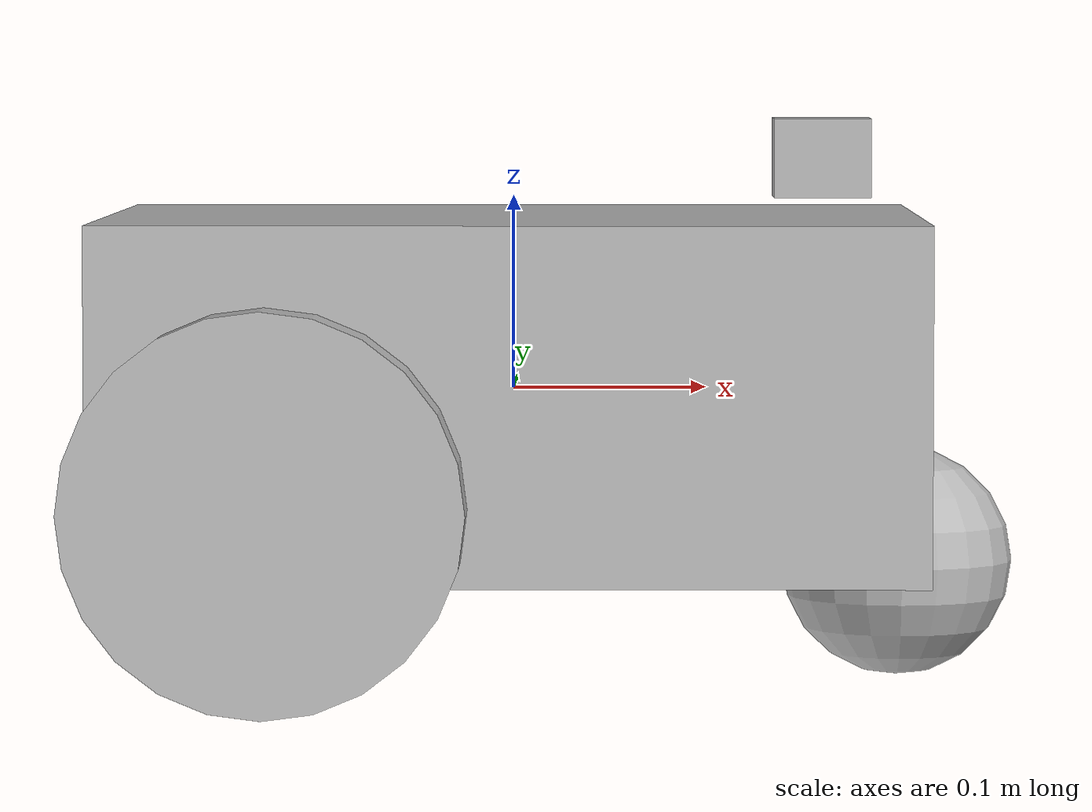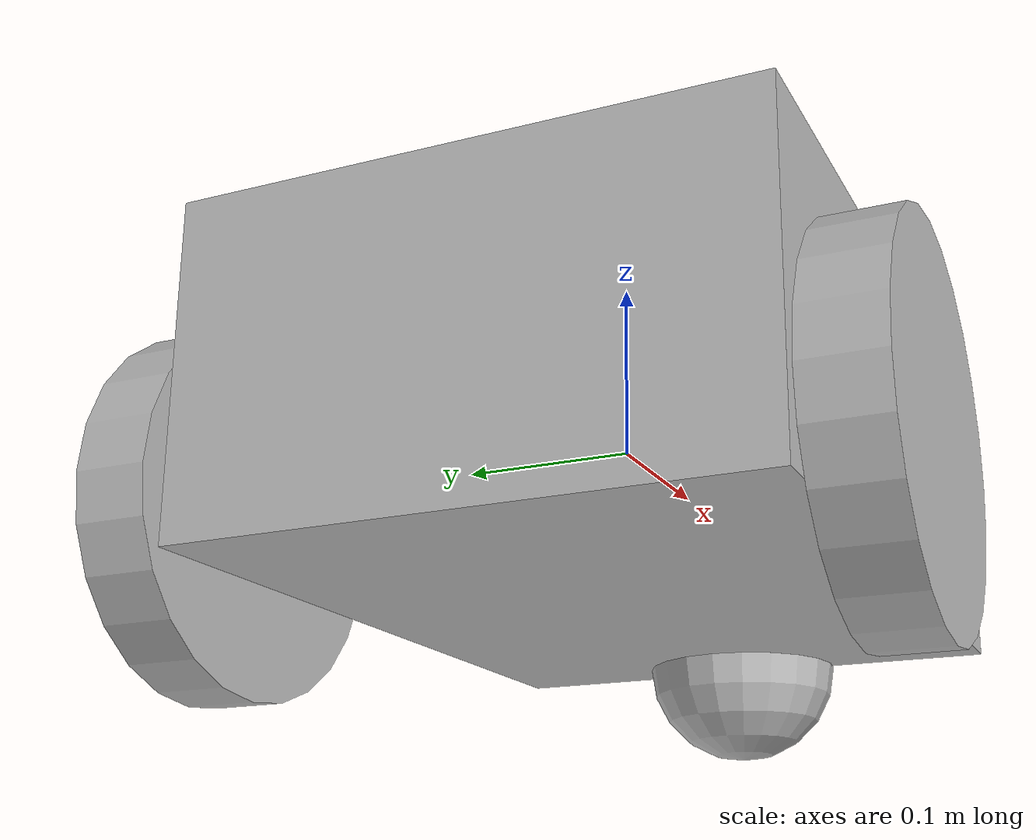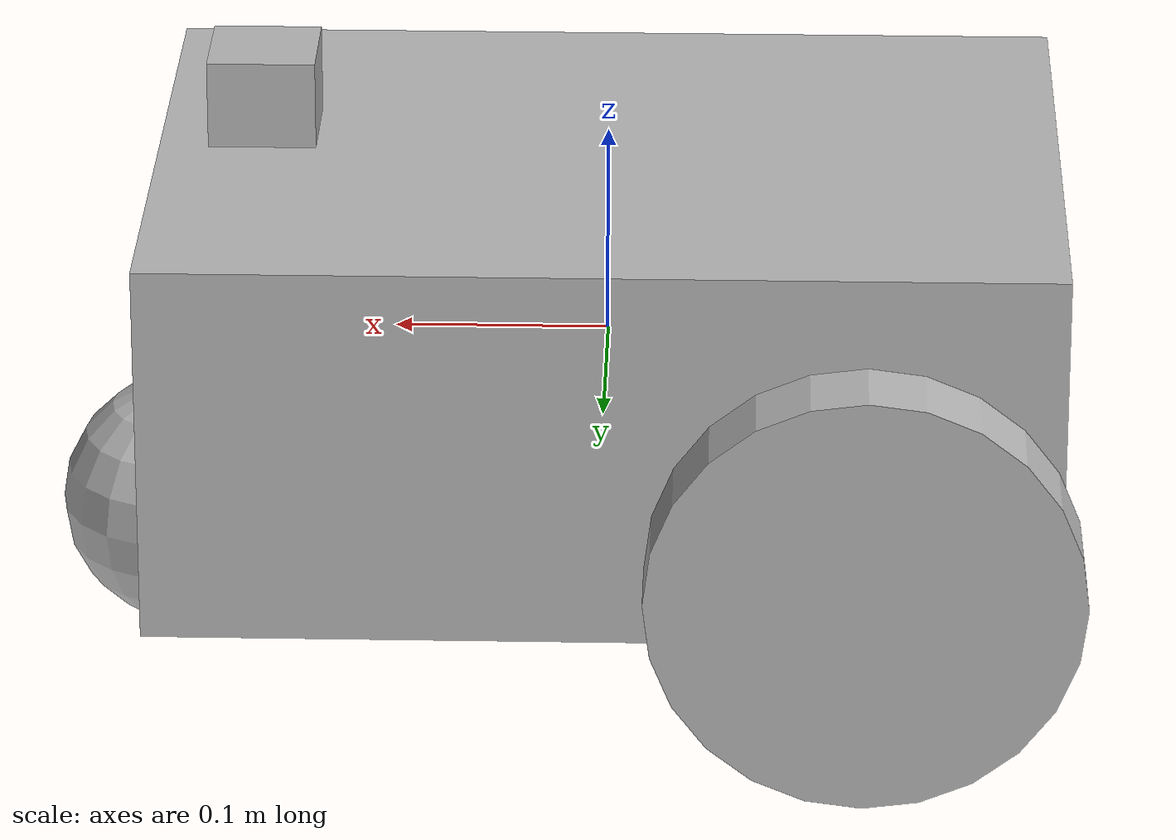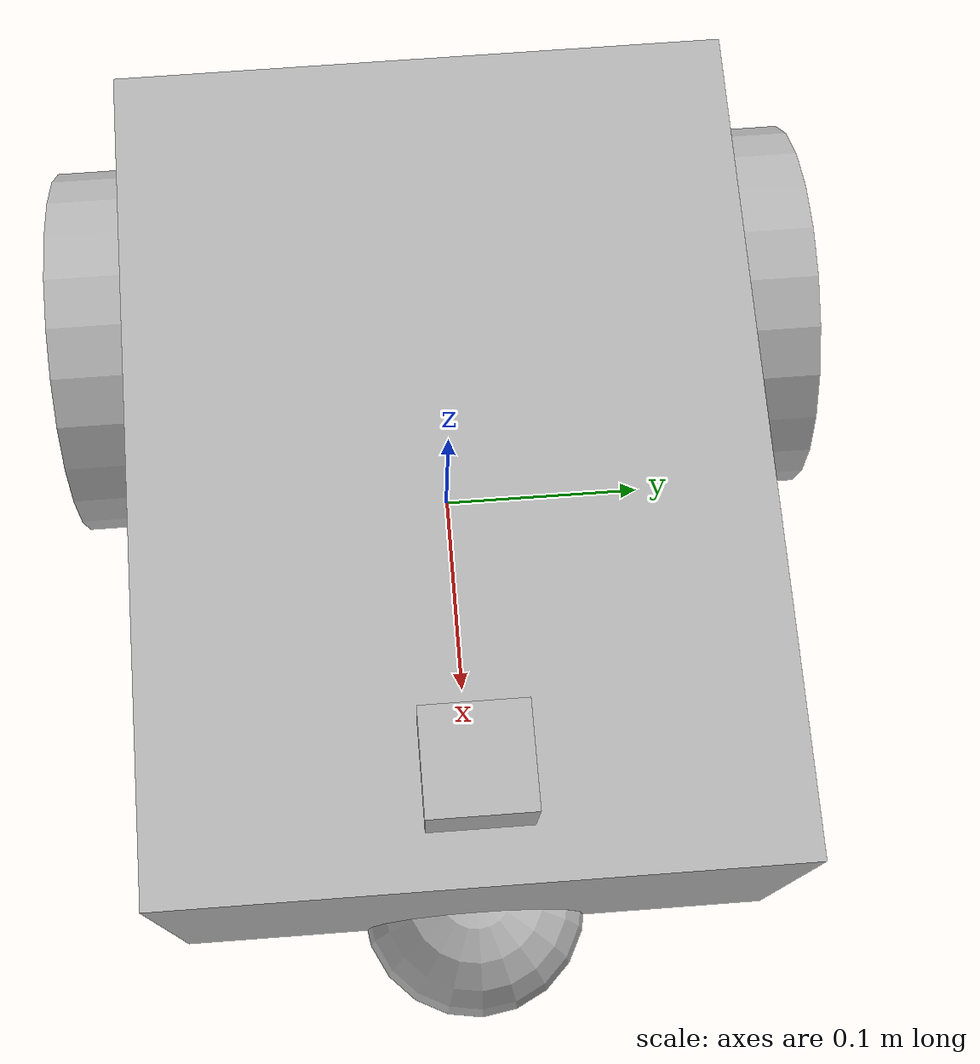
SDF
<?xml version="1.0"?>
<sdf version="1.5">

    <model name="orthopillar">
        <pose>0.0 0.0 0.0 0.0 0.0 0.0</pose>

        <!-- _________________________________________________________Robot Base_________________________________________________________ -->
        <link name="base_footprint"/>

        <link name="base_link">

            <inertial>
                <pose>0.0 0.0 0.0 0.0 0.0 0.0</pose>
                <inertia>
                    <ixx>0.261</ixx>
                    <ixy>0.000</ixy>
                    <ixz>0.000</ixz>
                    <iyy>0.340625</iyy>
                    <iyz>0.000</iyz>
                    <izz>0.160625</izz>
                </inertia>
                <mass>15</mass>
            </inertial>

            <collision name="base_collision">
                <pose>0.0 0.0 0.0 0.0 0.0 0.0</pose>
                <geometry>
                    <box>
                        <size>0.42 0.31 0.18</size>
                    </box>
                </geometry>
            </collision>

            <visual name="base_visual">
                <pose>0.0 0.0 0.0 0.0 0.0 0.0</pose>
                <geometry>
                    <box>
                        <size>0.42 0.31 0.18</size>
                    </box>
                </geometry>
            </visual>
        </link>

        <!-- _________________________________________________________ LASER _________________________________________________________-->
        <link name="laser_link">

            <inertial>
                <pose>0 0 0 0 0 0</pose>
                <inertia>
                    <ixx>0.0</ixx>
                    <ixy>0.0</ixy>
                    <ixz>0.0</ixz>
                    <iyy>0.0</iyy>
                    <iyz>0.0</iyz>
                    <izz>0.0</izz>
                </inertia>
                <mass>0.1</mass>
            </inertial>

            <collision name="collision-base">
                <pose>0.16 0 0.12 0 0 0</pose>
                <geometry>
                    <box>
                        <size>0.05 0.05 0.041</size>
                    </box>
                </geometry>
            </collision>

            <visual name="visual-base">
                <pose>0.16 0  0.12 0 0 0</pose>
                <geometry>
                    <box>
                        <size>0.05 0.05 0.041</size>
                    </box>
                </geometry>
            </visual>

            <collision name="collision-top">
                <pose>0.16 0 0.12 0 0 0</pose>
                <geometry>
                    <cylinder>
                        <radius>0.021</radius>
                        <length>0.029</length>
                    </cylinder>
                </geometry>
            </collision>

            <visual name="visual-top">
                <pose>0.16 0 0.12 0 0 0</pose>
                <geometry>
                    <cylinder>
                        <radius>0.021</radius>
                        <length>0.029</length>
                    </cylinder>
                </geometry>
            </visual>

            <sensor name="laser" type="ray">
                <always_on>true</always_on>
                <visualize>true</visualize>
                <pose>0.16 0 0.12 0 0 0</pose>
                <update_rate>5</update_rate>
                <ray>
                    <scan>
                        <horizontal>
                            <samples>360</samples>
                            <resolution>1.000000</resolution>
                            <min_angle>-1.04</min_angle>
                            <max_angle>1.04</max_angle>
                        </horizontal>
                    </scan>
                    <range>
                        <min>0.120000</min>
                        <max>10</max>
                        <resolution>0.015000</resolution>
                    </range>
                    <noise>
                        <type>gaussian</type>
                        <mean>0.0</mean>
                        <stddev>0.01</stddev>
                    </noise>
                </ray>
                <plugin name="laser" filename="libgazebo_ros_ray_sensor.so">
                    <ros>
                        <remapping>~/out:=laser_scan</remapping>
                    </ros>
                    <output_type>sensor_msgs/LaserScan</output_type>
                    <frame_name>laser_link</frame_name>
                </plugin>
            </sensor>
        </link>

        <!-- _________________________________________________________Wheel left_________________________________________________________ -->
        <link name="drivewhl_l_link">

            <inertial>
                <pose>-0.12 0.18 -0.05 -1.57 0 0</pose>
                <inertia>
                    <ixx>0.001</ixx>
                    <ixy>0.000</ixy>
                    <ixz>0.000</ixz>
                    <iyy>0.001</iyy>
                    <iyz>0.000</iyz>
                    <izz>0.0025</izz>
                </inertia>
                <mass>0.5</mass>
            </inertial>

            <collision name="wheel_left_collision">
                <pose>-0.12 0.18 -0.05 -1.57 0 0</pose>
                <geometry>
                    <cylinder>
                        <radius>0.1</radius>
                        <length>0.04</length>
                    </cylinder>
                </geometry>

                <surface>
                    <!-- This friction pamareter don't contain reliable data!! -->
                    <friction>
                        <ode>
                            <mu>100000.0</mu>
                            <mu2>100000.0</mu2>
                            <fdir1>0 0 0</fdir1>
                            <slip1>0.0</slip1>
                            <slip2>0.0</slip2>
                        </ode>
                    </friction>
                    <contact>
                        <ode>
                            <soft_cfm>0</soft_cfm>
                            <soft_erp>0.2</soft_erp>
                            <kp>1e+5</kp>
                            <kd>1</kd>
                            <max_vel>0.01</max_vel>
                            <min_depth>0.001</min_depth>
                        </ode>
                    </contact>
                </surface>
            </collision>

            <visual name="wheel_left_visual">
                <pose>-0.12 0.18 -0.05 -1.57 0 0</pose>
                <geometry>
                    <cylinder>
                        <radius>0.1</radius>
                        <length>0.04</length>
                    </cylinder>
                </geometry>
            </visual>
        </link>

        <!-- _________________________________________________________Wheel right_________________________________________________________ -->
        <link name="drivewhl_r_link">

            <inertial>
                <pose>-0.12 -0.18 -0.05 -1.57 0 0</pose>
                <inertia>
                    <ixx>0.001</ixx>
                    <ixy>0.000</ixy>
                    <ixz>0.000</ixz>
                    <iyy>0.001</iyy>
                    <iyz>0.000</iyz>
                    <izz>0.0025</izz>
                </inertia>
                <mass>0.5</mass>
            </inertial>

            <collision name="wheel_right_collision">
                <pose>-0.12 -0.18 -0.05 -1.57 0 0</pose>
                <geometry>
                    <cylinder>
                        <radius>0.1</radius>
                        <length>0.04</length>
                    </cylinder>
                </geometry>
                <surface>
                    <!-- This friction pamareter don't contain reliable data!! -->
                    <friction>
                        <ode>
                            <mu>100000.0</mu>
                            <mu2>100000.0</mu2>
                            <fdir1>0 0 0</fdir1>
                            <slip1>0.0</slip1>
                            <slip2>0.0</slip2>
                        </ode>
                    </friction>
                    <contact>
                        <ode>
                            <soft_cfm>0</soft_cfm>
                            <soft_erp>0.2</soft_erp>
                            <kp>1e+5</kp>
                            <kd>1</kd>
                            <max_vel>0.01</max_vel>
                            <min_depth>0.001</min_depth>
                        </ode>
                    </contact>
                </surface>
            </collision>

            <visual name="wheel_right_visual">
                <pose>-0.12 -0.18 -0.05 -1.57 0 0</pose>
                <geometry>
                    <cylinder>
                        <radius>0.1</radius>
                        <length>0.04</length>
                    </cylinder>
                </geometry>
            </visual>
        </link>

        <!-- _________________________________________________________Caster Wheel_________________________________________________________ -->
        <link name='front_caster'>
            <pose>0.2 0.0 -0.09 0 0 0</pose>

            <inertial>
                <mass>0.005</mass>
                <inertia>
                    <ixx>0.00001</ixx>
                    <ixy>0.000</ixy>
                    <ixz>0.000</ixz>
                    <iyy>0.000072</iyy>
                    <iyz>0.000</iyz>
                    <izz>0.00001</izz>
                </inertia>
            </inertial>

            <collision name='collision'>
                <geometry>
                    <sphere>
                        <radius>0.06</radius>
                    </sphere>
                </geometry>
                <surface>
                    <contact>
                        <ode>
                            <soft_cfm>0</soft_cfm>
                            <soft_erp>0.2</soft_erp>
                            <kp>1e+5</kp>
                            <kd>1</kd>
                            <max_vel>0.01</max_vel>
                            <min_depth>0.001</min_depth>
                        </ode>
                    </contact>
                </surface>
            </collision>
            <visual name="front_visual">

                <geometry>
                    <sphere>
                        <radius>0.06</radius>
                    </sphere>
                </geometry>
            </visual>
        </link>
        <!-- ___________________________________________________________________JOINT___________________________________________________________________-->

        <joint name="base_joint" type="fixed">
            <parent>base_footprint</parent>
            <child>base_link</child>
            <pose>0.0 0.0 0 0 0 0</pose>
        </joint>

        <joint name="drivewhl_l_joint" type="revolute">
            <parent>base_link</parent>
            <child>drivewhl_l_link</child>
            <pose>-0.12 0.18 -0.05 -1.57 0 0</pose>
            <axis>
                <xyz>0 0 1</xyz>
            </axis>
        </joint>

        <joint name="drivewhl_r_joint" type="revolute">
            <parent>base_link</parent>
            <child>drivewhl_r_link</child>
            <pose>-0.12 -0.18 -0.05 -1.57 0 0</pose>
            <axis>
                <xyz>0 0 1</xyz>
            </axis>
        </joint>

        <joint name='caster_joint' type='ball'>
            <parent>base_link</parent>
            <child>front_caster</child>
        </joint>

        <joint name="laser_joint" type="fixed">
            <parent>base_link</parent>
            <child>laser_link</child>
            <pose>0.16 0 0.12 0 0 0</pose>
            <axis>
                <xyz>0 0 1</xyz>
            </axis>
        </joint>

        <!-- ___________________________________________________________________PLUGIN___________________________________________________________________-->

        <plugin name="diff_drive" filename="libgazebo_ros_diff_drive.so">

            <ros>
                <namespace>/demo</namespace>
            </ros>

            <update_rate>30</update_rate>

            <!-- wheels -->
            <left_joint>drivewhl_l_joint</left_joint>
            <right_joint>drivewhl_r_joint</right_joint>

            <!-- kinematics -->
            <wheel_separation>0.025</wheel_separation>
            <wheel_diameter>0.2</wheel_diameter>

            <!-- limits -->
            <max_wheel_torque>20</max_wheel_torque>
            <max_wheel_acceleration>1.0</max_wheel_acceleration>

            <command_topic>cmd_vel</command_topic>

            <!-- output -->
            <publish_odom>true</publish_odom>
            <publish_odom_tf>true</publish_odom_tf>
            <publish_wheel_tf>false</publish_wheel_tf>

            <odometry_topic>odom</odometry_topic>
            <odometry_frame>odom</odometry_frame>
            <robot_base_frame>base_footprint</robot_base_frame>

        </plugin>

        <plugin name="joint_state" filename="libgazebo_ros_joint_state_publisher.so">
            <ros>
                <remapping>~/out:=joint_states</remapping>
            </ros>
            <update_rate>30</update_rate>
            <joint_name>drivewhl_l_joint</joint_name>
            <joint_name>drivewhl_r_joint</joint_name>
        </plugin>

    </model>
</sdf>
